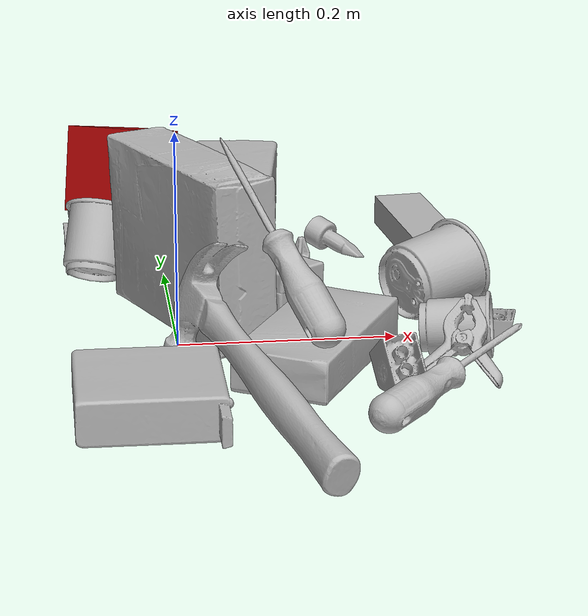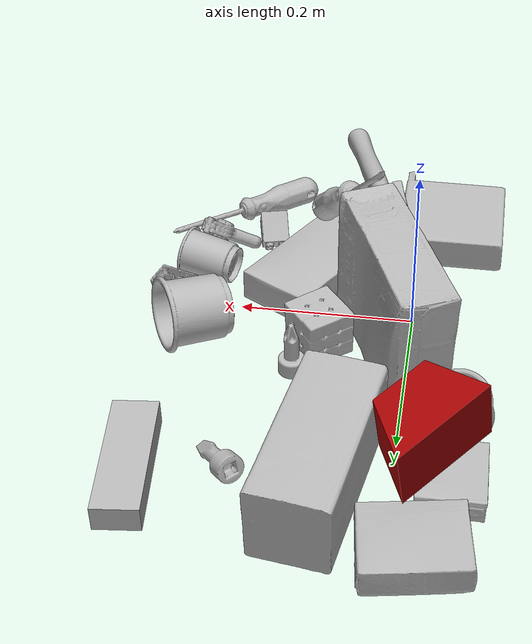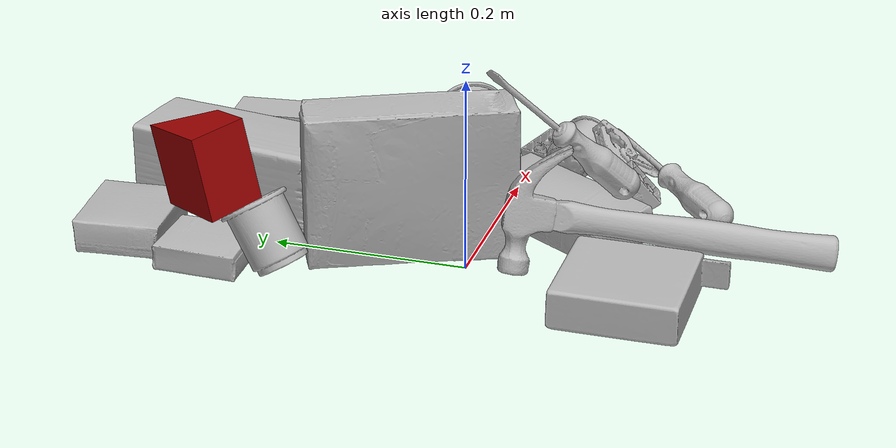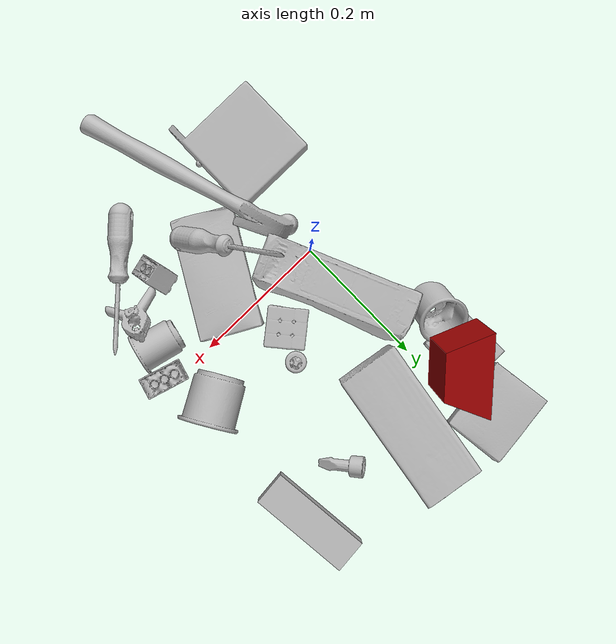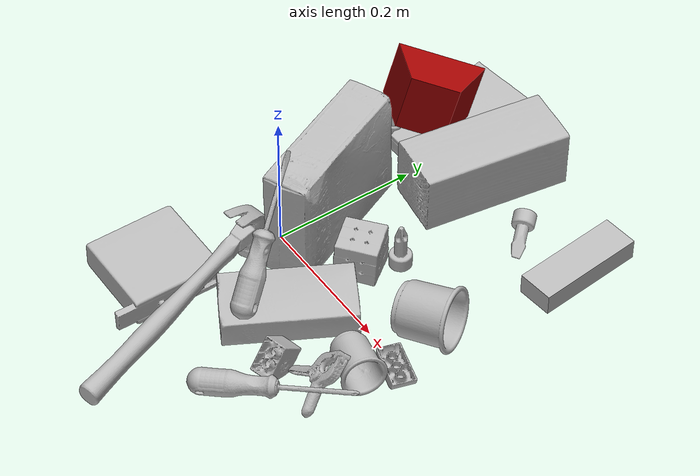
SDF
<sdf version="1.4">
  <world name="default">
    <light name="light1" type="point">
      <pose>0 0 1 0 0 0</pose>
      <diffuse>3 3 3 1</diffuse>
      <specular>3 3 3 1</specular>
    </light>
    <light name="light2" type="point">
      <pose>0 0.5 2 0 0 0</pose>
      <diffuse>1 1 1 1</diffuse>
      <specular>1 1 1 1</specular>
    </light>
    <light name="light3" type="point">
      <pose>0 0.5 2 0 0 0</pose>
      <diffuse>3 3 3 1</diffuse>
      <specular>3 3 3 1</specular>
    </light>
    <scene>
      <ambient>0.7 0.7 0.7</ambient>
    </scene>
    <model name="box21">
      <link name="link_box21">
        <collision name="default">
          <geometry>
            <mesh>
              <uri>model://cracker_box/collision_meshes/collision.obj</uri>
              <scale>1.0 1.0 1.0</scale>
            </mesh>
          </geometry>
          <surface>
            <friction>
              <ode>
                <mu>0.5</mu>
                <mu2>0.5</mu2>
              </ode>
            </friction>
          <contact>
        <ode>
            <max_vel>0</max_vel>
            <min_depth>0.0001</min_depth>
            <kp>1e8</kp>
        </ode>
    </contact></surface>
        </collision>
        <visual name="default">
          <geometry>
            <mesh>
              <uri>model://cracker_box/visual_meshes/visual.dae</uri>
              <scale>1.0 1.0 1.0</scale>
            </mesh>
          </geometry>
        </visual>
        <inertial>
          <mass>1.1849639415740967</mass>
          <pose>0.0009464144241064787 0.0002543424488976598 -0.0017029534792527556 -0.0003162077682631379 -0.011106487737543453 0.002546794536785776</pose>
          <inertia>
            <ixx>0.0030140192</ixx>
            <iyy>0.004976738</iyy>
            <izz>0.007102261</izz>
            <ixy>0</ixy>
            <ixz>0</ixz>
            <iyz>0</iyz>
          </inertia>
        </inertial>
      </link>
      <pose>0.019618237391114235 0.06381942331790924 0.08175774663686752 1.5452294226055077 0.009037366233123708 1.9981812593188044</pose>
    </model>
    <model name="box22">
      <link name="link_box22">
        <collision name="default">
          <geometry>
            <mesh>
              <uri>model://rubiks_cube/collision_meshes/collision.obj</uri>
              <scale>1.0 1.0 1.0</scale>
            </mesh>
          </geometry>
          <surface>
            <friction>
              <ode>
                <mu>0.5</mu>
                <mu2>0.5</mu2>
              </ode>
            </friction>
          <contact>
        <ode>
            <max_vel>0</max_vel>
            <min_depth>0.0001</min_depth>
            <kp>1e8</kp>
        </ode>
    </contact></surface>
        </collision>
        <visual name="default">
          <geometry>
            <mesh>
              <uri>model://rubiks_cube/visual_meshes/visual.dae</uri>
              <scale>1.0 1.0 1.0</scale>
            </mesh>
          </geometry>
        </visual>
        <inertial>
          <mass>0.10796652734279633</mass>
          <pose>2.6721041649580002e-05 5.2569666877388954e-05 -7.264316082000732e-06 -0.054672548620525036 -0.09813983330627576 -0.03445544186372042</pose>
          <inertia>
            <ixx>5.965876e-05</ixx>
            <iyy>5.9380527e-05</iyy>
            <izz>6.0153117e-05</izz>
            <ixy>0</ixy>
            <ixz>0</ixz>
            <iyz>0</iyz>
          </inertia>
        </inertial>
      </link>
      <pose>0.10092221200466156 0.05549514293670654 0.02905971184372902 -3.134139642626017 0.010892086190733705 2.2275545523574927</pose>
    </model>
    <model name="box23">
      <link name="link_box23">
        <collision name="default">
          <geometry>
            <mesh>
              <uri>model://sugar_box/collision_meshes/collision.obj</uri>
              <scale>1.0 1.0 1.0</scale>
            </mesh>
          </geometry>
          <surface>
            <friction>
              <ode>
                <mu>0.5</mu>
                <mu2>0.5</mu2>
              </ode>
            </friction>
          <contact>
        <ode>
            <max_vel>0</max_vel>
            <min_depth>0.0001</min_depth>
            <kp>1e8</kp>
        </ode>
    </contact></surface>
        </collision>
        <visual name="default">
          <geometry>
            <mesh>
              <uri>model://sugar_box/visual_meshes/visual.dae</uri>
              <scale>1.0 1.0 1.0</scale>
            </mesh>
          </geometry>
        </visual>
        <inertial>
          <mass>0.8519012928009033</mass>
          <pose>0.0010343727190047503 3.8491099985549226e-05 -0.0003636480832938105 -0.00040462606756407727 0.0010506635218583888 0.002615378789044619</pose>
          <inertia>
            <ixx>0.00070980185</ixx>
            <iyy>0.0022942254</iyy>
            <izz>0.0027464617</izz>
            <ixy>0</ixy>
            <ixz>0</ixz>
            <iyz>0</iyz>
          </inertia>
        </inertial>
      </link>
      <pose>0.11815759539604187 -0.06724260002374649 0.02279876545071602 0.0007332321388395553 -0.023414864682458663 1.0495957885174139</pose>
    </model>
    <model name="cup1">
      <link name="link_cup1">
        <collision name="default">
          <geometry>
            <mesh>
              <uri>model://b_cups/collision_meshes/collision.obj</uri>
              <scale>1.0 1.0 1.0</scale>
            </mesh>
          </geometry>
          <surface>
            <friction>
              <ode>
                <mu>0.5</mu>
                <mu2>0.5</mu2>
              </ode>
            </friction>
          <contact>
        <ode>
            <max_vel>0</max_vel>
            <min_depth>0.0001</min_depth>
            <kp>1e8</kp>
        </ode>
    </contact></surface>
        </collision>
        <visual name="default">
          <geometry>
            <mesh>
              <uri>model://b_cups/visual_meshes/visual.dae</uri>
              <scale>1.0 1.0 1.0</scale>
            </mesh>
          </geometry>
        </visual>
        <inertial>
          <mass>0.025879299268126488</mass>
          <pose>0.0005181999877095222 0.0018058597343042493 -0.0013381816679611802 0.11356295314662153 0.03872538879904025 -0.34569789869984097</pose>
          <inertia>
            <ixx>1.6939814e-05</ixx>
            <iyy>1.6618207e-05</iyy>
            <izz>1.4254532e-05</izz>
            <ixy>0</ixy>
            <ixz>0</ixz>
            <iyz>0</iyz>
          </inertia>
        </inertial>
      </link>
      <pose>0.24643133580684662 -0.05318596214056015 0.02741844579577446 1.4754347570435216 0.2267076394489011 1.3065736442094908</pose>
    </model>
    <model name="cup2">
      <link name="link_cup2">
        <collision name="default">
          <geometry>
            <mesh>
              <uri>model://g_cups/collision_meshes/collision.obj</uri>
              <scale>1.0 1.0 1.0</scale>
            </mesh>
          </geometry>
          <surface>
            <friction>
              <ode>
                <mu>0.5</mu>
                <mu2>0.5</mu2>
              </ode>
            </friction>
          <contact>
        <ode>
            <max_vel>0</max_vel>
            <min_depth>0.0001</min_depth>
            <kp>1e8</kp>
        </ode>
    </contact></surface>
        </collision>
        <visual name="default">
          <geometry>
            <mesh>
              <uri>model://g_cups/visual_meshes/visual.dae</uri>
              <scale>1.0 1.0 1.0</scale>
            </mesh>
          </geometry>
        </visual>
        <inertial>
          <mass>0.06683293730020523</mass>
          <pose>-0.0007946278783492744 -4.206685844110325e-05 -0.002132937777787447 -0.21382591566164685 -0.31410327542238353 0.3112138520870617</pose>
          <inertia>
            <ixx>7.8009005e-05</ixx>
            <iyy>7.7743636e-05</iyy>
            <izz>8.080389e-05</izz>
            <ixy>0</ixy>
            <ixz>0</ixz>
            <iyz>0</iyz>
          </inertia>
        </inertial>
      </link>
      <pose>0.24344538152217865 0.05866057798266411 0.03992864862084389 1.1963802927147644 1.2688871039639762 1.749950231586113</pose>
    </model>
    <model name="box11">
      <link name="link_box11">
        <collision name="default">
          <geometry>
            <mesh>
              <uri>model://wood_block/collision_meshes/collision.obj</uri>
              <scale>1.0 1.0 1.0</scale>
            </mesh>
          </geometry>
          <surface>
            <friction>
              <ode>
                <mu>0.5</mu>
                <mu2>0.5</mu2>
              </ode>
            </friction>
          <contact>
        <ode>
            <max_vel>0</max_vel>
            <min_depth>0.0001</min_depth>
            <kp>1e8</kp>
        </ode>
    </contact></surface>
        </collision>
        <visual name="default">
          <geometry>
            <mesh>
              <uri>model://wood_block/visual_meshes/visual.dae</uri>
              <scale>1.0 1.0 1.0</scale>
            </mesh>
          </geometry>
        </visual>
        <inertial>
          <mass>0.9227498173713684</mass>
          <pose>-5.813315056002466e-06 -0.0005708094104193151 0.0002640858292579651 -0.05221074847543751 -0.005192695234575722 -0.00686137748598008</pose>
          <inertia>
            <ixx>0.001234779</ixx>
            <iyy>0.0039006667</iyy>
            <izz>0.0038860766</izz>
            <ixy>0</ixy>
            <ixz>0</ixz>
            <iyz>0</iyz>
          </inertia>
        </inertial>
      </link>
      <pose>0.07273160666227341 0.268503338098526 0.0452585369348526 -0.005208506976827662 0.005718740597536957 -1.7233192106388882</pose>
    </model>
    <model name="box12">
      <link name="link_box12">
        <collision name="default">
          <geometry>
            <mesh>
              <uri>model://pudding_box/collision_meshes/collision.obj</uri>
              <scale>1.0 1.0 1.0</scale>
            </mesh>
          </geometry>
          <surface>
            <friction>
              <ode>
                <mu>0.5</mu>
                <mu2>0.5</mu2>
              </ode>
            </friction>
          <contact>
        <ode>
            <max_vel>0</max_vel>
            <min_depth>0.0001</min_depth>
            <kp>1e8</kp>
        </ode>
    </contact></surface>
        </collision>
        <visual name="default">
          <geometry>
            <mesh>
              <uri>model://pudding_box/visual_meshes/visual.dae</uri>
              <scale>1.0 1.0 1.0</scale>
            </mesh>
          </geometry>
        </visual>
        <inertial>
          <mass>0.23326139152050018</mass>
          <pose>0.0004894821904599667 0.0008067885646596551 -0.0005188827635720372 0.0052131032034861725 -0.006603797335681708 0.02007982515858456</pose>
          <inertia>
            <ixx>0.00026369</ixx>
            <iyy>0.00017741251</iyy>
            <izz>0.00038940719</izz>
            <ixy>0</ixy>
            <ixz>0</ixz>
            <iyz>0</iyz>
          </inertia>
        </inertial>
      </link>
      <pose>-0.029326891526579857 0.3471291661262512 0.019725855439901352 0.022361206966350886 -0.011376627916639478 1.708756356860429</pose>
    </model>
    <model name="box13">
      <link name="link_box13">
        <collision name="default">
          <geometry>
            <mesh>
              <uri>model://gelatin_box/collision_meshes/collision.obj</uri>
              <scale>1.0 1.0 1.0</scale>
            </mesh>
          </geometry>
          <surface>
            <friction>
              <ode>
                <mu>0.5</mu>
                <mu2>0.5</mu2>
              </ode>
            </friction>
          <contact>
        <ode>
            <max_vel>0</max_vel>
            <min_depth>0.0001</min_depth>
            <kp>1e8</kp>
        </ode>
    </contact></surface>
        </collision>
        <visual name="default">
          <geometry>
            <mesh>
              <uri>model://gelatin_box/visual_meshes/visual.dae</uri>
              <scale>1.0 1.0 1.0</scale>
            </mesh>
          </geometry>
        </visual>
        <inertial>
          <mass>0.0997389405965805</mass>
          <pose>0.0004319618456065655 0.00011156871187267825 -0.0003640321083366871 -0.001050372080915675 -0.004755817759010177 0.0164405576084854</pose>
          <inertia>
            <ixx>7.040755e-05</ixx>
            <iyy>5.0291743e-05</iyy>
            <izz>0.000107175976</izz>
            <ixy>0</ixy>
            <ixz>0</ixz>
            <iyz>0</iyz>
          </inertia>
        </inertial>
      </link>
      <pose>-0.060167182236909866 0.25122758746147156 0.014580302871763706 -3.1258921219247306 -0.025707725002334716 0.017514613491124504</pose>
    </model>
    <model name="box14">
      <link name="link_box14">
        <collision name="default">
          <geometry>
            <mesh>
              <uri>model://jenga/collision_meshes/collision.obj</uri>
              <scale>1.0 1.0 1.0</scale>
            </mesh>
          </geometry>
          <surface>
            <friction>
              <ode>
                <mu>0.5</mu>
                <mu2>0.5</mu2>
              </ode>
            </friction>
          <contact>
        <ode>
            <max_vel>0</max_vel>
            <min_depth>0.0001</min_depth>
            <kp>1e8</kp>
        </ode>
    </contact></surface>
        </collision>
        <visual name="default">
          <geometry>
            <mesh>
              <uri>model://jenga/visual_meshes/visual.dae</uri>
              <scale>1.0 1.0 1.0</scale>
            </mesh>
          </geometry>
        </visual>
        <inertial>
          <mass>0.23366476595401764</mass>
          <pose>-2.502855807051674e-07 -0.0001025000965455547 -4.092339804628864e-05 0.0 -7.34215461761844e-07 0.0</pose>
          <inertia>
            <ixx>6.466071e-05</ixx>
            <iyy>0.0004381392</iyy>
            <izz>0.00046775083</izz>
            <ixy>0</ixy>
            <ixz>0</ixz>
            <iyz>0</iyz>
          </inertia>
        </inertial>
      </link>
      <pose>0.26779237389564514 0.27542129158973694 0.014999999664723873 1.1075089030689877e-08 -3.090752314865447e-09 1.673081631874698</pose>
    </model>
    <model name="cup15">
      <link name="link_cup15">
        <collision name="default">
          <geometry>
            <mesh>
              <uri>model://d_cups/collision_meshes/collision.obj</uri>
              <scale>1.0 1.0 1.0</scale>
            </mesh>
          </geometry>
          <surface>
            <friction>
              <ode>
                <mu>0.5</mu>
                <mu2>0.5</mu2>
              </ode>
            </friction>
          <contact>
        <ode>
            <max_vel>0</max_vel>
            <min_depth>0.0001</min_depth>
            <kp>1e8</kp>
        </ode>
    </contact></surface>
        </collision>
        <visual name="default">
          <geometry>
            <mesh>
              <uri>model://d_cups/visual_meshes/visual.dae</uri>
              <scale>1.0 1.0 1.0</scale>
            </mesh>
          </geometry>
        </visual>
        <inertial>
          <mass>0.05354860797524452</mass>
          <pose>0.000806806143373251 0.001911740517243743 -0.002266649389639497 0.240133395025133 -0.24708811164710584 0.5942101592185234</pose>
          <inertia>
            <ixx>4.4832785e-05</ixx>
            <iyy>4.470303e-05</iyy>
            <izz>4.0581297e-05</izz>
            <ixy>0</ixy>
            <ixz>0</ixz>
            <iyz>0</iyz>
          </inertia>
        </inertial>
      </link>
      <pose>-0.06546739488840103 0.18185798823833466 0.043308332562446594 -0.31212856770538644 0.49249872268834016 0.6544785507335563</pose>
    </model>
    <model name="toy1">
      <link name="link_toy1">
        <collision name="default">
          <geometry>
            <mesh>
              <uri>model://d_toy_airplane/collision_meshes/collision.obj</uri>
              <scale>1.0 1.0 1.0</scale>
            </mesh>
          </geometry>
          <surface>
            <friction>
              <ode>
                <mu>0.5</mu>
                <mu2>0.5</mu2>
              </ode>
            </friction>
          <contact>
        <ode>
            <max_vel>0</max_vel>
            <min_depth>0.0001</min_depth>
            <kp>1e8</kp>
        </ode>
    </contact></surface>
        </collision>
        <visual name="default">
          <geometry>
            <mesh>
              <uri>model://d_toy_airplane/visual_meshes/visual.dae</uri>
              <scale>1.0 1.0 1.0</scale>
            </mesh>
          </geometry>
        </visual>
        <inertial>
          <mass>0.01055214088410139</mass>
          <pose>9.410294296685606e-05 -5.809328649775125e-05 -0.011728094890713692 0.00026701540047293157 0.004678982739479609 0.5194739606880012</pose>
          <inertia>
            <ixx>3.1633276e-06</ixx>
            <iyy>3.1657132e-06</iyy>
            <izz>9.55029e-07</izz>
            <ixy>0</ixy>
            <ixz>0</ixz>
            <iyz>0</iyz>
          </inertia>
        </inertial>
      </link>
      <pose>0.1255621463060379 0.10016949474811554 0.033338770270347595 -3.8969028515978836e-05 -0.00017455481166889295 1.995344941925558</pose>
    </model>
    <model name="toy2">
      <link name="link_toy2">
        <collision name="default">
          <geometry>
            <mesh>
              <uri>model://d_lego_duplo/collision_meshes/collision.obj</uri>
              <scale>1.0 1.0 1.0</scale>
            </mesh>
          </geometry>
          <surface>
            <friction>
              <ode>
                <mu>0.5</mu>
                <mu2>0.5</mu2>
              </ode>
            </friction>
          <contact>
        <ode>
            <max_vel>0</max_vel>
            <min_depth>0.0001</min_depth>
            <kp>1e8</kp>
        </ode>
    </contact></surface>
        </collision>
        <visual name="default">
          <geometry>
            <mesh>
              <uri>model://d_lego_duplo/visual_meshes/visual.dae</uri>
              <scale>1.0 1.0 1.0</scale>
            </mesh>
          </geometry>
        </visual>
        <inertial>
          <mass>0.039816875010728836</mass>
          <pose>0.0028305640444159508 0.00016366131603717804 0.000858980929479003 0.08010950238605453 -0.3835521959243733 0.0010296761363168562</pose>
          <inertia>
            <ixx>7.70796e-06</ixx>
            <iyy>1.0939688e-05</iyy>
            <izz>1.0549791e-05</izz>
            <ixy>0</ixy>
            <ixz>0</ixz>
            <iyz>0</iyz>
          </inertia>
        </inertial>
      </link>
      <pose>0.18208304047584534 -0.12679775059223175 0.017907628789544106 -3.1376774317759826 -0.8553626655438493 1.8133981728852855</pose>
    </model>
    <model name="toy3">
      <link name="link_toy3">
        <collision name="default">
          <geometry>
            <mesh>
              <uri>model://nine_hole_peg_test/collision_meshes/collision.obj</uri>
              <scale>1.0 1.0 1.0</scale>
            </mesh>
          </geometry>
          <surface>
            <friction>
              <ode>
                <mu>0.5</mu>
                <mu2>0.5</mu2>
              </ode>
            </friction>
          <contact>
        <ode>
            <max_vel>0</max_vel>
            <min_depth>0.0001</min_depth>
            <kp>1e8</kp>
        </ode>
    </contact></surface>
        </collision>
        <visual name="default">
          <geometry>
            <mesh>
              <uri>model://nine_hole_peg_test/visual_meshes/visual.dae</uri>
              <scale>1.0 1.0 1.0</scale>
            </mesh>
          </geometry>
        </visual>
        <inertial>
          <mass>0.7048692107200623</mass>
          <pose>-0.0046173869632184505 -0.009647614322602749 2.6460689696250483e-05 -0.0014666794682547425 0.0007194190753660851 -0.6342416580414534</pose>
          <inertia>
            <ixx>0.0011021789</ixx>
            <iyy>0.0010290928</iyy>
            <izz>0.0019313421</izz>
            <ixy>0</ixy>
            <ixz>0</ixz>
            <iyz>0</iyz>
          </inertia>
        </inertial>
      </link>
      <pose>-0.03054027259349823 -0.18013375997543335 0.02079101838171482 -3.1415910925847355 1.5912760245051706e-07 -0.009080798254175002</pose>
    </model>
    <model name="toy4">
      <link name="link_toy4">
        <collision name="default">
          <geometry>
            <mesh>
              <uri>model://a_lego_duplo/collision_meshes/collision.obj</uri>
              <scale>1.0 1.0 1.0</scale>
            </mesh>
          </geometry>
          <surface>
            <friction>
              <ode>
                <mu>0.5</mu>
                <mu2>0.5</mu2>
              </ode>
            </friction>
          <contact>
        <ode>
            <max_vel>0</max_vel>
            <min_depth>0.0001</min_depth>
            <kp>1e8</kp>
        </ode>
    </contact></surface>
        </collision>
        <visual name="default">
          <geometry>
            <mesh>
              <uri>model://a_lego_duplo/visual_meshes/visual.dae</uri>
              <scale>1.0 1.0 1.0</scale>
            </mesh>
          </geometry>
        </visual>
        <inertial>
          <mass>0.021006127819418907</mass>
          <pose>-0.00011337678006384522 0.00018517556600272655 0.0003692602913361043 -0.014116980161978756 -0.00012565077681184441 6.142327078429463e-05</pose>
          <inertia>
            <ixx>2.6931523e-06</ixx>
            <iyy>6.033251e-06</iyy>
            <izz>7.473524e-06</izz>
            <ixy>0</ixy>
            <ixz>0</ixz>
            <iyz>0</iyz>
          </inertia>
        </inertial>
      </link>
      <pose>0.2760566771030426 -0.01279992051422596 0.012125469744205475 3.138801593387796 -0.013492486806961376 -0.28942326501064813</pose>
    </model>
    <model name="toy5">
      <link name="link_toy5">
        <collision name="default">
          <geometry>
            <mesh>
              <uri>model://e_toy_airplane/collision_meshes/collision.obj</uri>
              <scale>1.0 1.0 1.0</scale>
            </mesh>
          </geometry>
          <surface>
            <friction>
              <ode>
                <mu>0.5</mu>
                <mu2>0.5</mu2>
              </ode>
            </friction>
          <contact>
        <ode>
            <max_vel>0</max_vel>
            <min_depth>0.0001</min_depth>
            <kp>1e8</kp>
        </ode>
    </contact></surface>
        </collision>
        <visual name="default">
          <geometry>
            <mesh>
              <uri>model://e_toy_airplane/visual_meshes/visual.dae</uri>
              <scale>1.0 1.0 1.0</scale>
            </mesh>
          </geometry>
        </visual>
        <inertial>
          <mass>0.02451101876795292</mass>
          <pose>0.00011740468471543863 -2.248291639261879e-05 -0.011187203228473663 0.00551850103187323 0.009228285956806933 0.150416364683818</pose>
          <inertia>
            <ixx>7.481042e-06</ixx>
            <iyy>7.4045165e-06</iyy>
            <izz>2.2483475e-06</izz>
            <ixy>0</ixy>
            <ixz>0</ixz>
            <iyz>0</iyz>
          </inertia>
        </inertial>
      </link>
      <pose>0.1815352439880371 0.2503381371498108 0.010808565653860569 -2.1451303577706584 1.1027842459034198 -2.9249403341762767</pose>
    </model>
    <model name="toy6">
      <link name="link_toy6">
        <collision name="default">
          <geometry>
            <mesh>
              <uri>model://prism/collision_meshes/collision.obj</uri>
              <scale>1.0 1.0 1.0</scale>
            </mesh>
          </geometry>
          <surface>
            <friction>
              <ode>
                <mu>0.5</mu>
                <mu2>0.5</mu2>
              </ode>
            </friction>
          <contact>
        <ode>
            <max_vel>0</max_vel>
            <min_depth>0.0001</min_depth>
            <kp>1e8</kp>
        </ode>
    </contact></surface>
        </collision>
        <visual name="default">
          <geometry>
            <mesh>
              <uri>model://prism/visual_meshes/visual.dae</uri>
              <scale>1.0 1.0 1.0</scale>
            </mesh>
          </geometry>
        </visual>
        <inertial>
          <mass>0.639074981212616</mass>
          <pose>-9.85359656624496e-05 -4.96157269935793e-07 -0.003386910306289792 0.0 0.006559180766136186 0.0</pose>
          <inertia>
            <ixx>0.0005767573</ixx>
            <iyy>0.0006970186</iyy>
            <izz>0.0008537644</izz>
            <ixy>0</ixy>
            <ixz>0</ixz>
            <iyz>0</iyz>
          </inertia>
        </inertial>
      </link>
      <pose>-0.02860025130212307 0.25658708810806274 0.09309960156679153 -1.4585580894287327 -0.230664112587752 -2.3476066613328017</pose>
    </model>
    <model name="hardware1">
      <link name="link_hardware1">
        <collision name="default">
          <geometry>
            <mesh>
              <uri>model://medium_clamp/collision_meshes/collision.obj</uri>
              <scale>1.0 1.0 1.0</scale>
            </mesh>
          </geometry>
          <surface>
            <friction>
              <ode>
                <mu>0.5</mu>
                <mu2>0.5</mu2>
              </ode>
            </friction>
          <contact>
        <ode>
            <max_vel>0</max_vel>
            <min_depth>0.0001</min_depth>
            <kp>1e8</kp>
        </ode>
    </contact></surface>
        </collision>
        <visual name="default">
          <geometry>
            <mesh>
              <uri>model://medium_clamp/visual_meshes/visual.dae</uri>
              <scale>1.0 1.0 1.0</scale>
            </mesh>
          </geometry>
        </visual>
        <inertial>
          <mass>0.01437164656817913</mass>
          <pose>0.005390993785113096 0.00039532355731353164 -0.0001222158025484532 -0.001226922255807767 0.0025845058861846287 0.038207728721457376</pose>
          <inertia>
            <ixx>3.9153533e-06</ixx>
            <iyy>5.697947e-06</iyy>
            <izz>8.776544e-06</izz>
            <ixy>0</ixy>
            <ixz>0</ixz>
            <iyz>0</iyz>
          </inertia>
        </inertial>
      </link>
      <pose>0.2422686666250229 -0.10469774901866913 0.02972015179693699 3.1377428113768886 -0.7566188467485898 1.226584317595927</pose>
    </model>
    <model name="hardware2">
      <link name="link_hardware2">
        <collision name="default">
          <geometry>
            <mesh>
              <uri>model://hammer/collision_meshes/collision.obj</uri>
              <scale>1.0 1.0 1.0</scale>
            </mesh>
          </geometry>
          <surface>
            <friction>
              <ode>
                <mu>0.5</mu>
                <mu2>0.5</mu2>
              </ode>
            </friction>
          <contact>
        <ode>
            <max_vel>0</max_vel>
            <min_depth>0.0001</min_depth>
            <kp>1e8</kp>
        </ode>
    </contact></surface>
        </collision>
        <visual name="default">
          <geometry>
            <mesh>
              <uri>model://hammer/visual_meshes/visual.dae</uri>
              <scale>1.0 1.0 1.0</scale>
            </mesh>
          </geometry>
        </visual>
        <inertial>
          <mass>0.29233166575431824</mass>
          <pose>0.009415771812200546 -0.011892357841134071 -0.0001235063245985657 0.02315535385536088 -0.004792164028838156 -0.01276032390705471</pose>
          <inertia>
            <ixx>0.0001252207</ixx>
            <iyy>0.003393116</iyy>
            <izz>0.0034903311</izz>
            <ixy>0</ixy>
            <ixz>0</ixz>
            <iyz>0</iyz>
          </inertia>
        </inertial>
      </link>
      <pose>0.05480510741472244 -0.18272948265075684 0.05457587540149689 1.7838126529058804 -0.14762965885393586 1.8683088795456169</pose>
    </model>
    <model name="hardware3">
      <link name="link_hardware3">
        <collision name="default">
          <geometry>
            <mesh>
              <uri>model://phillips_screwdriver/collision_meshes/collision.obj</uri>
              <scale>1.0 1.0 1.0</scale>
            </mesh>
          </geometry>
          <surface>
            <friction>
              <ode>
                <mu>0.5</mu>
                <mu2>0.5</mu2>
              </ode>
            </friction>
          <contact>
        <ode>
            <max_vel>0</max_vel>
            <min_depth>0.0001</min_depth>
            <kp>1e8</kp>
        </ode>
    </contact></surface>
        </collision>
        <visual name="default">
          <geometry>
            <mesh>
              <uri>model://phillips_screwdriver/visual_meshes/visual.dae</uri>
              <scale>1.0 1.0 1.0</scale>
            </mesh>
          </geometry>
        </visual>
        <inertial>
          <mass>0.11685379594564438</mass>
          <pose>-0.04777182638645172 0.0010362302418798208 -0.0004555549821816385 -0.15721778382646787 0.005850995328295584 -0.002156740385256481</pose>
          <inertia>
            <ixx>1.3729124e-05</ixx>
            <iyy>0.00017213916</iyy>
            <izz>0.00017228544</izz>
            <ixy>0</ixy>
            <ixz>0</ixz>
            <iyz>0</iyz>
          </inertia>
        </inertial>
      </link>
      <pose>0.22142557799816132 -0.1617399901151657 0.02641952782869339 0.10011677996753676 -0.109496437103757 0.7816992052129815</pose>
    </model>
    <model name="hardware4">
      <link name="link_hardware4">
        <collision name="default">
          <geometry>
            <mesh>
              <uri>model://flat_screwdriver/collision_meshes/collision.obj</uri>
              <scale>1.0 1.0 1.0</scale>
            </mesh>
          </geometry>
          <surface>
            <friction>
              <ode>
                <mu>0.5</mu>
                <mu2>0.5</mu2>
              </ode>
            </friction>
          <contact>
        <ode>
            <max_vel>0</max_vel>
            <min_depth>0.0001</min_depth>
            <kp>1e8</kp>
        </ode>
    </contact></surface>
        </collision>
        <visual name="default">
          <geometry>
            <mesh>
              <uri>model://flat_screwdriver/visual_meshes/visual.dae</uri>
              <scale>1.0 1.0 1.0</scale>
            </mesh>
          </geometry>
        </visual>
        <inertial>
          <mass>0.10915977507829666</mass>
          <pose>-0.0489187091588974 -0.0006576799787580967 -0.000614091579336673 -0.5614402636475724 -0.003233725963840683 0.006982283174401888</pose>
          <inertia>
            <ixx>1.2897148e-05</ixx>
            <iyy>0.0001637322</iyy>
            <izz>0.00016365637</izz>
            <ixy>0</ixy>
            <ixz>0</ixz>
            <iyz>0</iyz>
          </inertia>
        </inertial>
      </link>
      <pose>0.08305435627698898 -0.07772620767354965 0.12137654423713684 1.0604553826326615 -0.7522850093256868 2.1468014475358346</pose>
    </model>
  <physics type="ode">
      <max_contacts>50</max_contacts>
      <ode>
        <solver>
          <type>quick</type>
          <iters>75</iters>
        </solver>
        <constraints>
          <contact_max_correcting_vel>0</contact_max_correcting_vel>
          <contact_surface_layer>0</contact_surface_layer>
        </constraints>
      </ode>
    </physics></world>
</sdf>
